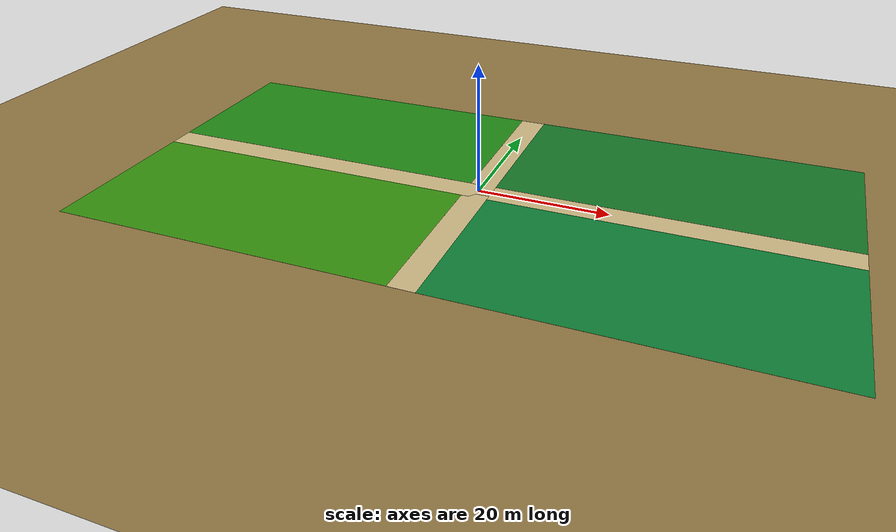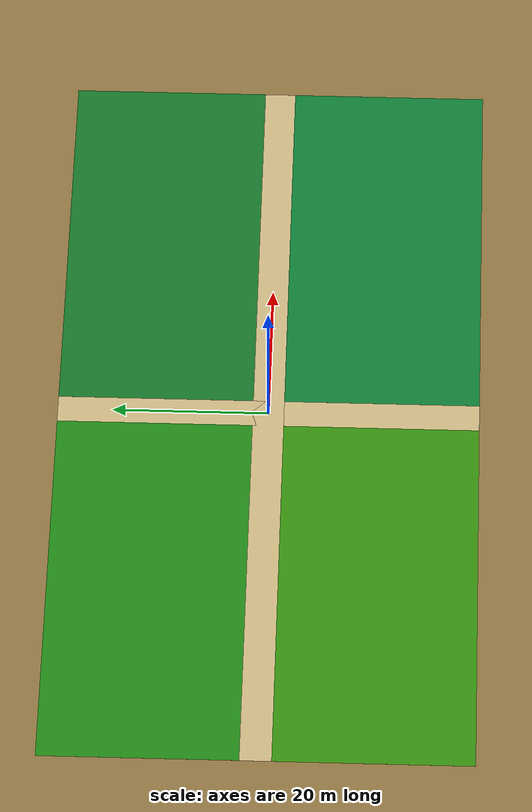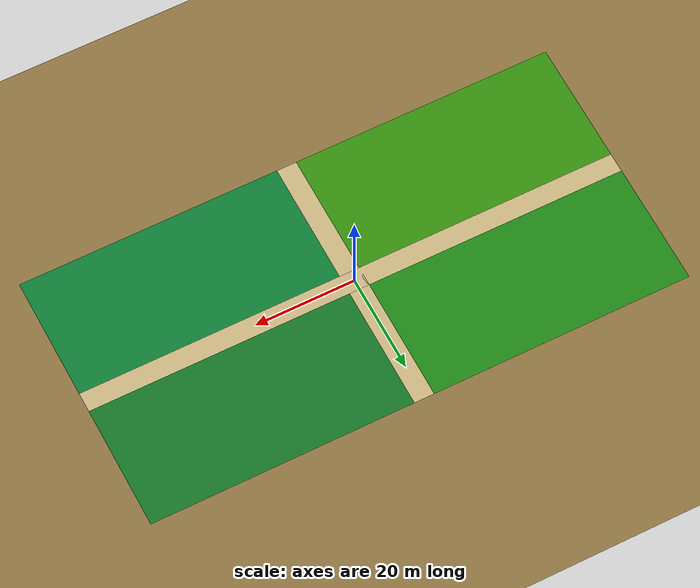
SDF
<sdf version="1.9">
 <world name="farmland">
  <physics type="ode">
   <max_step_size>0.004</max_step_size>
   <real_time_factor>1.0</real_time_factor>
   <real_time_update_rate>250</real_time_update_rate>
  </physics>
  <gravity>0 0 -9.8</gravity>
  <atmosphere type="adiabatic"/>
  <scene>
   <grid>false</grid>
   <ambient>0.6 0.6 0.6 1</ambient>
   <background>0.5 0.7 0.9 1</background>
   <shadows>true</shadows>
  </scene>
  <light name="sun" type="directional">
   <pose>0 0 500 0 0 0</pose>
   <intensity>1</intensity>
   <direction>0.001 0.625 -0.78</direction>
   <diffuse>0.9 0.9 0.9 1</diffuse>
   <specular>0.3 0.3 0.3 1</specular>
   <attenuation><range>2000</range><linear>0</linear><constant>1</constant><quadratic>0</quadratic></attenuation>
  </light>
  <spherical_coordinates>
   <surface_model>EARTH_WGS84</surface_model>
   <world_frame_orientation>ENU</world_frame_orientation>
   <latitude_deg>37.5484</latitude_deg>
   <longitude_deg>127.0736</longitude_deg>
   <elevation>20</elevation>
  </spherical_coordinates>
  <model name="ground_plane">
   <static>true</static>
   <link name="link">
    <collision name="collision">
     <geometry><plane><normal>0 0 1</normal><size>1 1</size></plane></geometry>
    </collision>
    <visual name="visual">
     <geometry><plane><normal>0 0 1</normal><size>150 80</size></plane></geometry>
     <material><ambient>0.55 0.45 0.25 1</ambient><diffuse>0.55 0.45 0.25 1</diffuse></material>
    </visual>
   </link>
  </model>
  <model name="road_EW">
   <static>true</static>
   <pose>0 0 0.001 0 0 0</pose>
   <link name="link">
    <collision name="collision"><geometry><box><size>108.4 4 0.002</size></box></geometry></collision>
    <visual name="visual">
     <geometry><box><size>108.4 4 0.002</size></box></geometry>
     <material><ambient>0.78 0.70 0.50 1</ambient><diffuse>0.78 0.70 0.50 1</diffuse></material>
    </visual>
   </link>
  </model>
  <model name="road_NS">
   <static>true</static>
   <pose>0 0 0.001 0 0 0</pose>
   <link name="link">
    <collision name="collision"><geometry><box><size>4 54.2 0.002</size></box></geometry></collision>
    <visual name="visual">
     <geometry><box><size>4 54.2 0.002</size></box></geometry>
     <material><ambient>0.78 0.70 0.50 1</ambient><diffuse>0.78 0.70 0.50 1</diffuse></material>
    </visual>
   </link>
  </model>
  <model name="farmland_A">
   <static>true</static>
   <pose>-28.1 14.55 0.003 0 0 0</pose>
   <link name="link">
    <collision name="collision"><geometry><box><size>52.2 25.1 0.004</size></box></geometry></collision>
    <visual name="visual">
     <geometry><box><size>52.2 25.1 0.004</size></box></geometry>
     <material><ambient>0.12 0.52 0.08 1</ambient><diffuse>0.12 0.52 0.08 1</diffuse></material>
    </visual>
   </link>
  </model>
  <model name="farmland_B">
   <static>true</static>
   <pose>28.1 14.55 0.003 0 0 0</pose>
   <link name="link">
    <collision name="collision"><geometry><box><size>52.2 25.1 0.004</size></box></geometry></collision>
    <visual name="visual">
     <geometry><box><size>52.2 25.1 0.004</size></box></geometry>
     <material><ambient>0.08 0.45 0.15 1</ambient><diffuse>0.08 0.45 0.15 1</diffuse></material>
    </visual>
   </link>
  </model>
  <model name="farmland_C">
   <static>true</static>
   <pose>-28.1 -14.55 0.003 0 0 0</pose>
   <link name="link">
    <collision name="collision"><geometry><box><size>52.2 25.1 0.004</size></box></geometry></collision>
    <visual name="visual">
     <geometry><box><size>52.2 25.1 0.004</size></box></geometry>
     <material><ambient>0.20 0.55 0.05 1</ambient><diffuse>0.20 0.55 0.05 1</diffuse></material>
    </visual>
   </link>
  </model>
  <model name="farmland_D">
   <static>true</static>
   <pose>28.1 -14.55 0.003 0 0 0</pose>
   <link name="link">
    <collision name="collision"><geometry><box><size>52.2 25.1 0.004</size></box></geometry></collision>
    <visual name="visual">
     <geometry><box><size>52.2 25.1 0.004</size></box></geometry>
     <material><ambient>0.05 0.48 0.20 1</ambient><diffuse>0.05 0.48 0.20 1</diffuse></material>
    </visual>
   </link>
  </model>
  <model name="f450_on_rover">
   <static>true</static>
   <pose>0 0 0.22 0 0 0</pose>
   <link name="body">
    <visual name="body_visual">
     <pose>0 0 0 1.5708 0 0</pose>
     <geometry>
      <mesh>
       <scale>0.001 0.001 0.001</scale>
       <uri>file:///home/user/PX4-Autopilot/Tools/simulation/gz/models/f450/meshes/f450_body.stl</uri>
      </mesh>
     </geometry>
     <material>
      <ambient>0.15 0.15 0.15 1</ambient>
      <diffuse>0.20 0.20 0.20 1</diffuse>
      <specular>0.3 0.3 0.3 1</specular>
     </material>
    </visual>
    <visual name="prop_0_visual">
     <pose>0.1591 -0.1591 0.05 0 0 0</pose>
     <geometry>
      <mesh>
       <scale>0.001 0.001 0.001</scale>
       <uri>file:///home/user/PX4-Autopilot/Tools/simulation/gz/models/f450/meshes/f450_prop.stl</uri>
      </mesh>
     </geometry>
     <material><ambient>0.1 0.1 0.1 1</ambient><diffuse>0.1 0.1 0.1 1</diffuse></material>
    </visual>
    <visual name="prop_1_visual">
     <pose>-0.1591 0.1591 0.05 0 0 0</pose>
     <geometry>
      <mesh>
       <scale>0.001 0.001 0.001</scale>
       <uri>file:///home/user/PX4-Autopilot/Tools/simulation/gz/models/f450/meshes/f450_prop.stl</uri>
      </mesh>
     </geometry>
     <material><ambient>0.1 0.1 0.1 1</ambient><diffuse>0.1 0.1 0.1 1</diffuse></material>
    </visual>
    <visual name="prop_2_visual">
     <pose>0.1591 0.1591 0.05 0 0 3.14159</pose>
     <geometry>
      <mesh>
       <scale>0.001 0.001 0.001</scale>
       <uri>file:///home/user/PX4-Autopilot/Tools/simulation/gz/models/f450/meshes/f450_prop.stl</uri>
      </mesh>
     </geometry>
     <material><ambient>0.1 0.1 0.1 1</ambient><diffuse>0.1 0.1 0.1 1</diffuse></material>
    </visual>
    <visual name="prop_3_visual">
     <pose>-0.1591 -0.1591 0.05 0 0 3.14159</pose>
     <geometry>
      <mesh>
       <scale>0.001 0.001 0.001</scale>
       <uri>file:///home/user/PX4-Autopilot/Tools/simulation/gz/models/f450/meshes/f450_prop.stl</uri>
      </mesh>
     </geometry>
     <material><ambient>0.1 0.1 0.1 1</ambient><diffuse>0.1 0.1 0.1 1</diffuse></material>
    </visual>
   </link>
  </model>
 </world>
</sdf>
